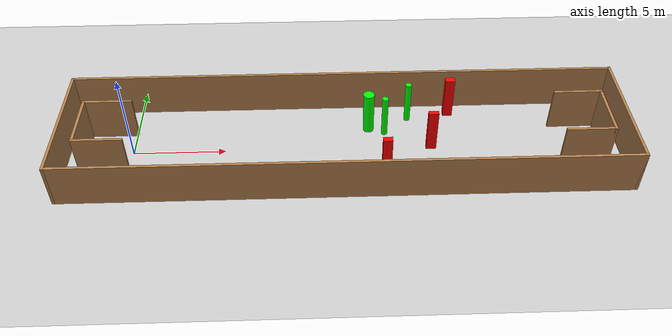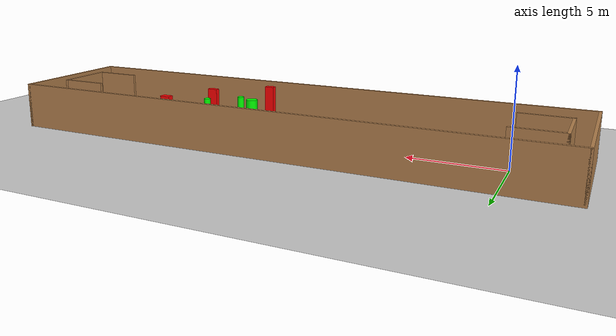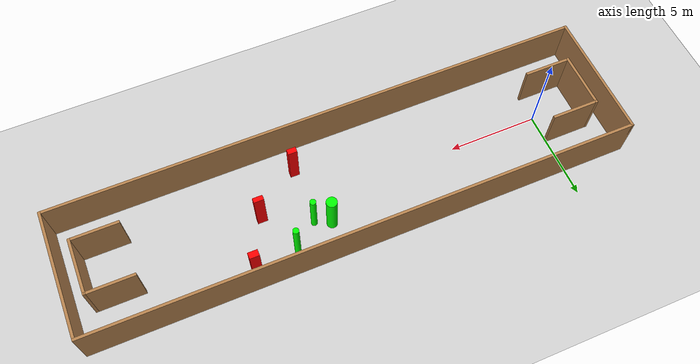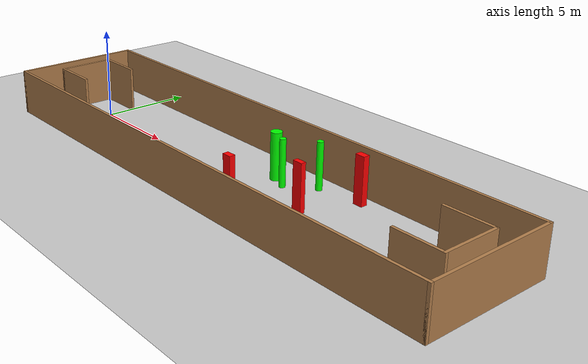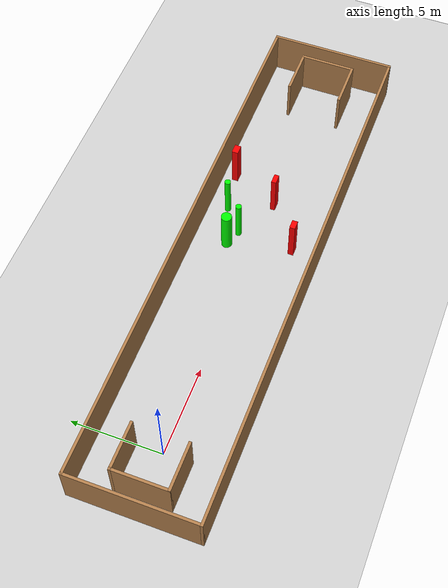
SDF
<sdf version="1.7">
 <world name="default">
  <light name="sun" type="directional">
   <pose>0 0 10 0 -0 0</pose>
   <diffuse>0.8 0.8 0.8 1</diffuse>
   <specular>0.2 0.2 0.2 1</specular>
   <attenuation>
    <range>1000</range>
    <constant>0.9</constant>
    <linear>0.01</linear>
    <quadratic>0.001</quadratic>
   </attenuation>
   <direction>-0.5 0.1 -0.9</direction>
   <spot><inner_angle>0</inner_angle><outer_angle>0</outer_angle><falloff>0</falloff></spot>
  </light>
  <model name="ground_plane">
   <static>1</static>
   <link name="link">
    <collision name="collision">
     <geometry><plane><normal>0 0 1</normal><size>100 100</size></plane></geometry>
     <surface>
      <contact><collide_bitmask>65535</collide_bitmask></contact>
      <friction><ode><mu>100</mu><mu2>50</mu2></ode></friction>
     </surface>
    </collision>
    <visual name="visual">
     <cast_shadows>0</cast_shadows>
     <geometry><plane><normal>0 0 1</normal><size>100 100</size></plane></geometry>
     <material>
      <script><uri>file://media/materials/scripts/gazebo.material</uri><name>Gazebo/Grey</name></script>
     </material>
    </visual>
   </link>
  </model>
  <gravity>0 0 -9.8</gravity>
  <magnetic_field>6e-06 2.3e-05 -4.2e-05</magnetic_field>
  <atmosphere type="adiabatic"/>
  <physics type="ode">
   <max_step_size>0.001</max_step_size>
   <real_time_factor>1</real_time_factor>
   <real_time_update_rate>1000</real_time_update_rate>
  </physics>
  <scene><ambient>0.4 0.4 0.4 1</ambient><background>0.7 0.7 0.7 1</background><shadows>1</shadows></scene>
  <spherical_coordinates>
   <surface_model>EARTH_WGS84</surface_model>
   <latitude_deg>0</latitude_deg>
   <longitude_deg>0</longitude_deg>
   <elevation>0</elevation>
   <heading_deg>0</heading_deg>
  </spherical_coordinates>
  <model name="my_base_walls">
   <link name="Wall_0">
    <collision name="Wall_0_Collision">
     <geometry><box><size>7.15 0.15 2.5</size></box></geometry>
     <pose>0 0 1.25 0 -0 0</pose>
    </collision>
    <visual name="Wall_0_Visual">
     <pose>0 0 1.25 0 -0 0</pose>
     <geometry><box><size>7.15 0.15 2.5</size></box></geometry>
     <material>
      <script><uri>file://media/materials/scripts/gazebo.material</uri><name>Gazebo/Wood</name></script>
      <ambient>1 1 1 1</ambient>
     </material>
     <meta><layer>0</layer></meta>
    </visual>
    <pose>-15 0 0 0 -0 1.5708</pose>
   </link>
   <link name="Wall_10">
    <collision name="Wall_10_Collision">
     <geometry><box><size>2.65 0.15 2.5</size></box></geometry>
     <pose>0 0 1.25 0 -0 0</pose>
    </collision>
    <visual name="Wall_10_Visual">
     <pose>0 0 1.25 0 -0 0</pose>
     <geometry><box><size>2.65 0.15 2.5</size></box></geometry>
     <material>
      <script><uri>file://media/materials/scripts/gazebo.material</uri><name>Gazebo/Wood</name></script>
      <ambient>1 1 1 1</ambient>
     </material>
     <meta><layer>0</layer></meta>
    </visual>
    <pose>-12.75 -1.5 0 0 -0 0</pose>
   </link>
   <link name="Wall_12">
    <collision name="Wall_12_Collision">
     <geometry><box><size>2.65 0.15 2.5</size></box></geometry>
     <pose>0 0 1.25 0 -0 0</pose>
    </collision>
    <visual name="Wall_12_Visual">
     <pose>0 0 1.25 0 -0 0</pose>
     <geometry><box><size>2.65 0.15 2.5</size></box></geometry>
     <material>
      <script><uri>file://media/materials/scripts/gazebo.material</uri><name>Gazebo/Wood</name></script>
      <ambient>1 1 1 1</ambient>
     </material>
     <meta><layer>0</layer></meta>
    </visual>
    <pose>-12.75 1.5 0 0 -0 0</pose>
   </link>
   <link name="Wall_14">
    <collision name="Wall_14_Collision">
     <geometry><box><size>3.15 0.15 2.5</size></box></geometry>
     <pose>0 0 1.25 0 -0 0</pose>
    </collision>
    <visual name="Wall_14_Visual">
     <pose>0 0 1.25 0 -0 0</pose>
     <geometry><box><size>3.15 0.15 2.5</size></box></geometry>
     <material>
      <script><uri>file://media/materials/scripts/gazebo.material</uri><name>Gazebo/Wood</name></script>
      <ambient>1 1 1 1</ambient>
     </material>
     <meta><layer>0</layer></meta>
    </visual>
    <pose>14 0 0 0 -0 -1.5708</pose>
   </link>
   <link name="Wall_15">
    <collision name="Wall_15_Collision">
     <geometry><box><size>2.65 0.15 2.5</size></box></geometry>
     <pose>0 0 1.25 0 -0 0</pose>
    </collision>
    <visual name="Wall_15_Visual">
     <pose>0 0 1.25 0 -0 0</pose>
     <geometry><box><size>2.65 0.15 2.5</size></box></geometry>
     <material>
      <script><uri>file://media/materials/scripts/gazebo.material</uri><name>Gazebo/Wood</name></script>
      <ambient>1 1 1 1</ambient>
     </material>
     <meta><layer>0</layer></meta>
    </visual>
    <pose>12.75 -1.5 0 0 -0 3.14159</pose>
   </link>
   <link name="Wall_17">
    <collision name="Wall_17_Collision">
     <geometry><box><size>2.65 0.15 2.5</size></box></geometry>
     <pose>0 0 1.25 0 -0 0</pose>
    </collision>
    <visual name="Wall_17_Visual">
     <pose>0 0 1.25 0 -0 0</pose>
     <geometry><box><size>2.65 0.15 2.5</size></box></geometry>
     <material>
      <script><uri>file://media/materials/scripts/gazebo.material</uri><name>Gazebo/Wood</name></script>
      <ambient>1 1 1 1</ambient>
     </material>
     <meta><layer>0</layer></meta>
    </visual>
    <pose>12.75 1.5 0 0 -0 3.14159</pose>
   </link>
   <link name="Wall_2">
    <collision name="Wall_2_Collision">
     <geometry><box><size>30.15 0.15 2.5</size></box></geometry>
     <pose>0 0 1.25 0 -0 0</pose>
    </collision>
    <visual name="Wall_2_Visual">
     <pose>0 0 1.25 0 -0 0</pose>
     <geometry><box><size>30.15 0.15 2.5</size></box></geometry>
     <material>
      <script><uri>file://media/materials/scripts/gazebo.material</uri><name>Gazebo/Wood</name></script>
      <ambient>1 1 1 1</ambient>
     </material>
     <meta><layer>0</layer></meta>
    </visual>
    <pose>-0 -3.5 0 0 -0 0</pose>
   </link>
   <link name="Wall_4">
    <collision name="Wall_4_Collision">
     <geometry><box><size>30.15 0.15 2.5</size></box></geometry>
     <pose>0 0 1.25 0 -0 0</pose>
    </collision>
    <visual name="Wall_4_Visual">
     <pose>0 0 1.25 0 -0 0</pose>
     <geometry><box><size>30.15 0.15 2.5</size></box></geometry>
     <material>
      <script><uri>file://media/materials/scripts/gazebo.material</uri><name>Gazebo/Wood</name></script>
      <ambient>1 1 1 1</ambient>
     </material>
     <meta><layer>0</layer></meta>
    </visual>
    <pose>-0 3.5 0 0 -0 0</pose>
   </link>
   <link name="Wall_6">
    <collision name="Wall_6_Collision">
     <geometry><box><size>7.15 0.15 2.5</size></box></geometry>
     <pose>0 0 1.25 0 -0 0</pose>
    </collision>
    <visual name="Wall_6_Visual">
     <pose>0 0 1.25 0 -0 0</pose>
     <geometry><box><size>7.15 0.15 2.5</size></box></geometry>
     <material>
      <script><uri>file://media/materials/scripts/gazebo.material</uri><name>Gazebo/Wood</name></script>
      <ambient>1 1 1 1</ambient>
     </material>
     <meta><layer>0</layer></meta>
    </visual>
    <pose>15 0 0 0 -0 -1.5708</pose>
   </link>
   <link name="Wall_9">
    <collision name="Wall_9_Collision">
     <geometry><box><size>3.15 0.15 2.5</size></box></geometry>
     <pose>0 0 1.25 0 -0 0</pose>
    </collision>
    <visual name="Wall_9_Visual">
     <pose>0 0 1.25 0 -0 0</pose>
     <geometry><box><size>3.15 0.15 2.5</size></box></geometry>
     <material>
      <script><uri>file://media/materials/scripts/gazebo.material</uri><name>Gazebo/Wood</name></script>
      <ambient>1 1 1 1</ambient>
     </material>
     <meta><layer>0</layer></meta>
    </visual>
    <pose>-14 0 0 0 -0 -1.5708</pose>
   </link>
   <static>1</static>
   <pose>11.5 0 0 0 -0 0</pose>
  </model>
  <model name="cylinder1">
   <static>1</static>
   <link name="link">
    <inertial>
     <mass>1</mass>
     <inertia><ixx>0.5</ixx><ixy>0</ixy><ixz>0</ixz><iyy>0.5</iyy><iyz>0</iyz><izz>1</izz></inertia>
    </inertial>
    <collision name="collision">
     <geometry><cylinder><radius>0.1680311876165499</radius><length>2.5</length></cylinder></geometry>
    </collision>
    <visual name="visual">
     <geometry><cylinder><radius>0.1680311876165499</radius><length>2.5</length></cylinder></geometry>
     <material>
      <ambient>0 1 0 1</ambient>
      <diffuse>0 1 0 1</diffuse>
      <specular>0.1 0.1 0.1 1</specular>
      <emissive>0 0 0 0</emissive>
     </material>
    </visual>
   </link>
   <pose>15.071656173812663 2.352833488151351 1.25 0 0 0</pose>
  </model>
  <model name="cylinder2">
   <static>1</static>
   <link name="link">
    <inertial>
     <mass>1</mass>
     <inertia><ixx>0.5</ixx><ixy>0</ixy><ixz>0</ixz><iyy>0.5</iyy><iyz>0</iyz><izz>1</izz></inertia>
    </inertial>
    <collision name="collision">
     <geometry><cylinder><radius>0.29627133937402883</radius><length>2.5</length></cylinder></geometry>
    </collision>
    <visual name="visual">
     <geometry><cylinder><radius>0.29627133937402883</radius><length>2.5</length></cylinder></geometry>
     <material>
      <ambient>0 1 0 1</ambient>
      <diffuse>0 1 0 1</diffuse>
      <specular>0.1 0.1 0.1 1</specular>
      <emissive>0 0 0 0</emissive>
     </material>
    </visual>
   </link>
   <pose>12.845528659687105 1.5788764657079772 1.25 0 0 0</pose>
  </model>
  <model name="cylinder3">
   <static>1</static>
   <link name="link">
    <inertial>
     <mass>1</mass>
     <inertia><ixx>0.5</ixx><ixy>0</ixy><ixz>0</ixz><iyy>0.5</iyy><iyz>0</iyz><izz>1</izz></inertia>
    </inertial>
    <collision name="collision">
     <geometry><cylinder><radius>0.16667886161930567</radius><length>2.5</length></cylinder></geometry>
    </collision>
    <visual name="visual">
     <geometry><cylinder><radius>0.16667886161930567</radius><length>2.5</length></cylinder></geometry>
     <material>
      <ambient>0 1 0 1</ambient>
      <diffuse>0 1 0 1</diffuse>
      <specular>0.1 0.1 0.1 1</specular>
      <emissive>0 0 0 0</emissive>
     </material>
    </visual>
   </link>
   <pose>13.714021239329576 1.2103332192274046 1.25 0 0 0</pose>
  </model>
  <model name="box1">
   <static>1</static>
   <link name="link">
    <inertial>
     <mass>1</mass>
     <inertia><ixx>0.083</ixx><ixy>0</ixy><ixz>0</ixz><iyy>0.083</iyy><iyz>0</iyz><izz>0.083</izz></inertia>
    </inertial>
    <collision name="collision">
     <geometry><box><size>0.5024421152171654 0.30811380125557625 2.5</size></box></geometry>
    </collision>
    <visual name="visual">
     <geometry><box><size>0.5024421152171654 0.30811380125557625 2.5</size></box></geometry>
     <material>
      <ambient>1 0 0 1</ambient>
      <diffuse>1 0 0 1</diffuse>
      <specular>0.1 0.1 0.1 1</specular>
      <emissive>0 0 0 0</emissive>
     </material>
    </visual>
    <sensor name="my_contact" type="contact">
     <contact><collision>box_collision</collision><topic>__default_topic__</topic></contact>
    </sensor>
   </link>
   <pose>13.62379358336318 -1.9588212122374715 1.25 0 0 0</pose>
  </model>
  <model name="box2">
   <static>1</static>
   <link name="link">
    <inertial>
     <mass>1</mass>
     <inertia><ixx>0.083</ixx><ixy>0</ixy><ixz>0</ixz><iyy>0.083</iyy><iyz>0</iyz><izz>0.083</izz></inertia>
    </inertial>
    <collision name="collision">
     <geometry><box><size>0.5448396728223928 0.2694114437640841 2.5</size></box></geometry>
    </collision>
    <visual name="visual">
     <geometry><box><size>0.5448396728223928 0.2694114437640841 2.5</size></box></geometry>
     <material>
      <ambient>1 0 0 1</ambient>
      <diffuse>1 0 0 1</diffuse>
      <specular>0.1 0.1 0.1 1</specular>
      <emissive>0 0 0 0</emissive>
     </material>
    </visual>
    <sensor name="my_contact" type="contact">
     <contact><collision>box_collision</collision><topic>__default_topic__</topic></contact>
    </sensor>
   </link>
   <pose>16.188896791925444 -0.007888180563265124 1.25 0 0 0</pose>
  </model>
  <model name="box3">
   <static>1</static>
   <link name="link">
    <inertial>
     <mass>1</mass>
     <inertia><ixx>0.083</ixx><ixy>0</ixy><ixz>0</ixz><iyy>0.083</iyy><iyz>0</iyz><izz>0.083</izz></inertia>
    </inertial>
    <collision name="collision">
     <geometry><box><size>0.5254716538775377 0.35047477658977216 2.5</size></box></geometry>
    </collision>
    <visual name="visual">
     <geometry><box><size>0.5254716538775377 0.35047477658977216 2.5</size></box></geometry>
     <material>
      <ambient>1 0 0 1</ambient>
      <diffuse>1 0 0 1</diffuse>
      <specular>0.1 0.1 0.1 1</specular>
      <emissive>0 0 0 0</emissive>
     </material>
    </visual>
    <sensor name="my_contact" type="contact">
     <contact><collision>box_collision</collision><topic>__default_topic__</topic></contact>
    </sensor>
   </link>
   <pose>17.409744007743782 2.7169312054280654 1.25 0 0 0</pose>
  </model>
 </world>
</sdf>
